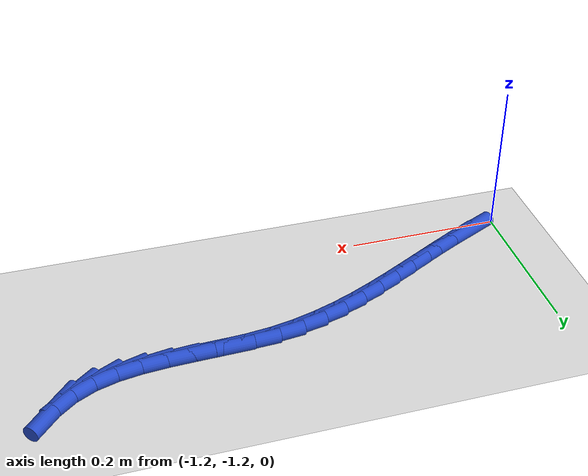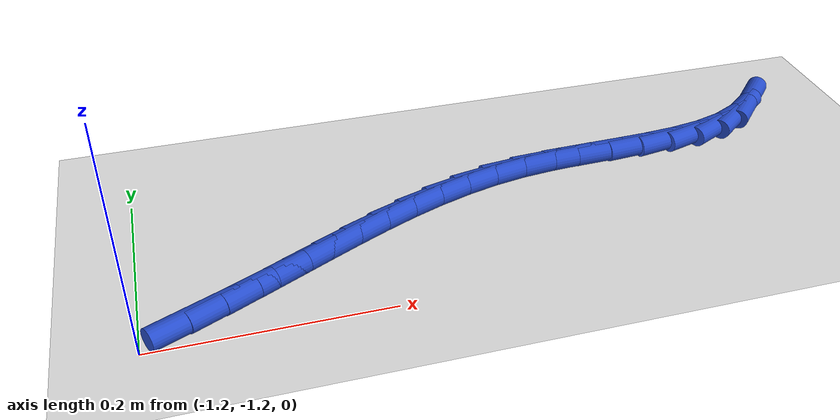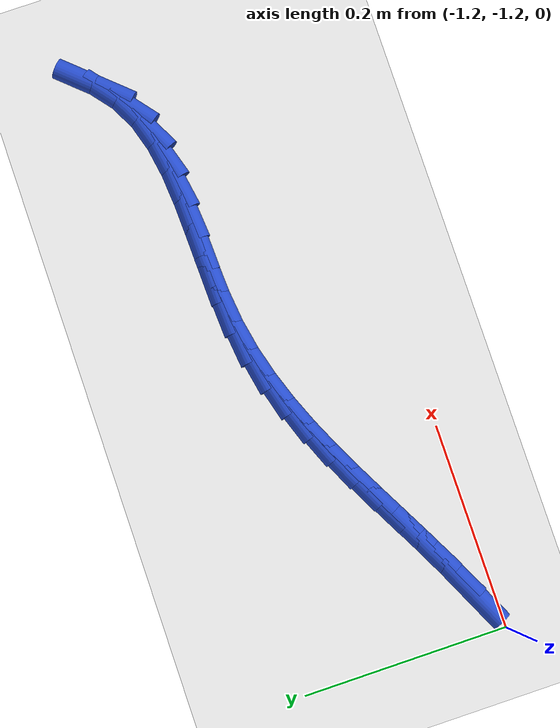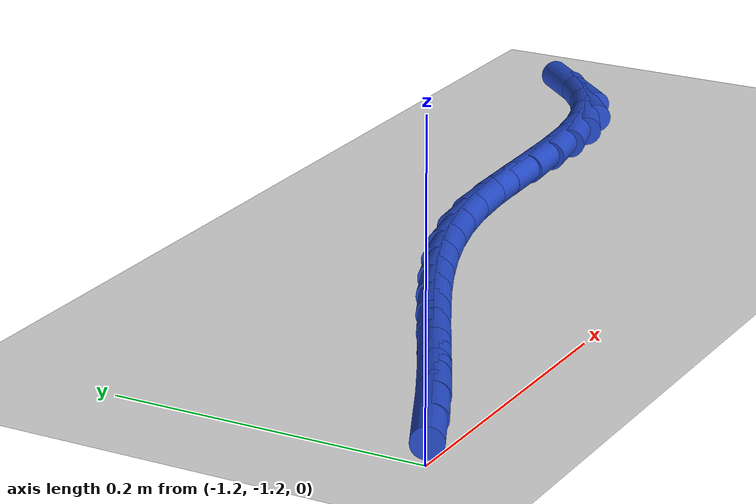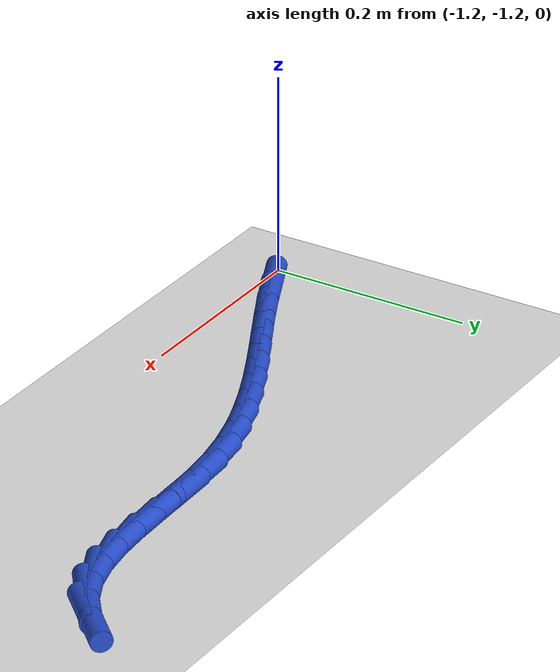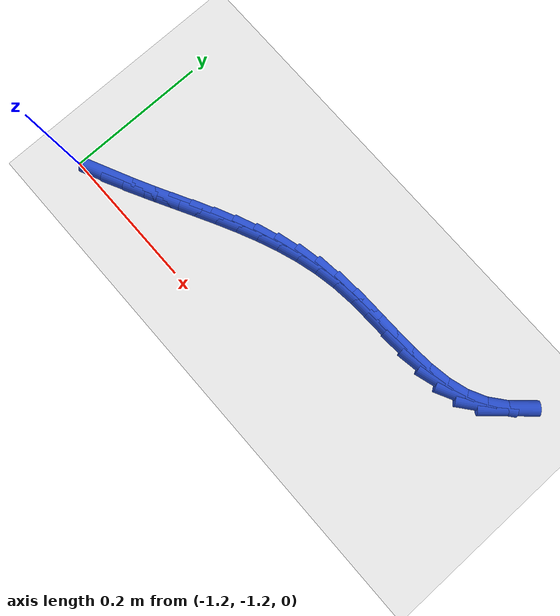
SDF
<sdf version="1.6">
 <world name="default">
  <model name="ground_plane">
   <static>1</static>
   <link name="link">
    <collision name="collision">
     <geometry><plane><normal>0 0 1</normal><size>100 100</size></plane></geometry>
     <surface><friction><ode><mu>100</mu><mu2>50</mu2></ode></friction></surface>
    </collision>
    <visual name="visual">
     <cast_shadows>0</cast_shadows>
     <geometry><plane><normal>0 0 1</normal><size>100 100</size></plane></geometry>
     <material>
      <script><uri>file://media/materials/scripts/gazebo.material</uri><name>Gazebo/WhiteGlow</name></script>
     </material>
    </visual>
   </link>
  </model>
  <model name="line">
   <link name="link_181">
    <pose>-1.156591870119526 -1.1799944481574243 0.01 0 1.57 0.44338196629081533</pose>
    <collision name="collision">
     <geometry><cylinder><radius>0.01</radius><length>0.08</length></cylinder></geometry>
    </collision>
    <visual name="visual">
     <material>
      <script><name>Gazebo/Blue</name><uri>file://media/materials/scripts/gazebo.material</uri></script>
     </material>
     <geometry><cylinder><radius>0.01</radius><length>0.08</length></cylinder></geometry>
    </visual>
   </link>
   <link name="link_182">
    <pose>-1.1275433743508079 -1.1661987755394667 0.01 0 1.57 0.46963307695380613</pose>
    <collision name="collision">
     <geometry><cylinder><radius>0.01</radius><length>0.08</length></cylinder></geometry>
    </collision>
    <visual name="visual">
     <material>
      <script><name>Gazebo/Blue</name><uri>file://media/materials/scripts/gazebo.material</uri></script>
     </material>
     <geometry><cylinder><radius>0.01</radius><length>0.08</length></cylinder></geometry>
    </visual>
   </link>
   <link name="link_183">
    <pose>-1.0992935250026412 -1.1518618531710723 0.01 0 1.57 0.48520798476041205</pose>
    <collision name="collision">
     <geometry><cylinder><radius>0.01</radius><length>0.08</length></cylinder></geometry>
    </collision>
    <visual name="visual">
     <material>
      <script><name>Gazebo/Blue</name><uri>file://media/materials/scripts/gazebo.material</uri></script>
     </material>
     <geometry><cylinder><radius>0.01</radius><length>0.08</length></cylinder></geometry>
    </visual>
   </link>
   <link name="link_184">
    <pose>-1.0716421486666659 -1.1372827082661183 0.01 0 1.57 0.48959633672031083</pose>
    <collision name="collision">
     <geometry><cylinder><radius>0.01</radius><length>0.08</length></cylinder></geometry>
    </collision>
    <visual name="visual">
     <material>
      <script><name>Gazebo/Blue</name><uri>file://media/materials/scripts/gazebo.material</uri></script>
     </material>
     <geometry><cylinder><radius>0.01</radius><length>0.08</length></cylinder></geometry>
    </visual>
   </link>
   <link name="link_185">
    <pose>-1.04438907193452 -1.122760368038482 0.01 0 1.57 0.48236442349186165</pose>
    <collision name="collision">
     <geometry><cylinder><radius>0.01</radius><length>0.08</length></cylinder></geometry>
    </collision>
    <visual name="visual">
     <material>
      <script><name>Gazebo/Blue</name><uri>file://media/materials/scripts/gazebo.material</uri></script>
     </material>
     <geometry><cylinder><radius>0.01</radius><length>0.08</length></cylinder></geometry>
    </visual>
   </link>
   <link name="link_186">
    <pose>-1.017334121397844 -1.1085938597020426 0.01 0 1.57 0.4631492879248311</pose>
    <collision name="collision">
     <geometry><cylinder><radius>0.01</radius><length>0.08</length></cylinder></geometry>
    </collision>
    <visual name="visual">
     <material>
      <script><name>Gazebo/Blue</name><uri>file://media/materials/scripts/gazebo.material</uri></script>
     </material>
     <geometry><cylinder><radius>0.01</radius><length>0.08</length></cylinder></geometry>
    </visual>
   </link>
   <link name="link_187">
    <pose>-0.9902771236482759 -1.095082210470676 0.01 0 1.57 0.4316994193126159</pose>
    <collision name="collision">
     <geometry><cylinder><radius>0.01</radius><length>0.08</length></cylinder></geometry>
    </collision>
    <visual name="visual">
     <material>
      <script><name>Gazebo/Blue</name><uri>file://media/materials/scripts/gazebo.material</uri></script>
     </material>
     <geometry><cylinder><radius>0.01</radius><length>0.08</length></cylinder></geometry>
    </visual>
   </link>
   <link name="link_188">
    <pose>-0.9630179052774549 -1.0825244475582607 0.01 0 1.57 0.3879698155243463</pose>
    <collision name="collision">
     <geometry><cylinder><radius>0.01</radius><length>0.08</length></cylinder></geometry>
    </collision>
    <visual name="visual">
     <material>
      <script><name>Gazebo/Blue</name><uri>file://media/materials/scripts/gazebo.material</uri></script>
     </material>
     <geometry><cylinder><radius>0.01</radius><length>0.08</length></cylinder></geometry>
    </visual>
   </link>
   <link name="link_189">
    <pose>-0.9353562928770199 -1.0712195981786743 0.01 0 1.57 0.332269404309817</pose>
    <collision name="collision">
     <geometry><cylinder><radius>0.01</radius><length>0.08</length></cylinder></geometry>
    </collision>
    <visual name="visual">
     <material>
      <script><name>Gazebo/Blue</name><uri>file://media/materials/scripts/gazebo.material</uri></script>
     </material>
     <geometry><cylinder><radius>0.01</radius><length>0.08</length></cylinder></geometry>
    </visual>
   </link>
   <link name="link_190">
    <pose>-0.9070921130386101 -1.0614666895457945 0.01 0 1.57 0.26543847760644756</pose>
    <collision name="collision">
     <geometry><cylinder><radius>0.01</radius><length>0.08</length></cylinder></geometry>
    </collision>
    <visual name="visual">
     <material>
      <script><name>Gazebo/Blue</name><uri>file://media/materials/scripts/gazebo.material</uri></script>
     </material>
     <geometry><cylinder><radius>0.01</radius><length>0.08</length></cylinder></geometry>
    </visual>
   </link>
   <link name="link_191">
    <pose>-0.8780251923538644 -1.0535647488734985 0.01 0 1.57 0.18900307240420916</pose>
    <collision name="collision">
     <geometry><cylinder><radius>0.01</radius><length>0.08</length></cylinder></geometry>
    </collision>
    <visual name="visual">
     <material>
      <script><name>Gazebo/Blue</name><uri>file://media/materials/scripts/gazebo.material</uri></script>
     </material>
     <geometry><cylinder><radius>0.01</radius><length>0.08</length></cylinder></geometry>
    </visual>
   </link>
   <link name="link_192">
    <pose>-0.847955357414421 -1.0478128033756642 0.01 0 1.57 0.1077946562150761</pose>
    <collision name="collision">
     <geometry><cylinder><radius>0.01</radius><length>0.08</length></cylinder></geometry>
    </collision>
    <visual name="visual">
     <material>
      <script><name>Gazebo/Blue</name><uri>file://media/materials/scripts/gazebo.material</uri></script>
     </material>
     <geometry><cylinder><radius>0.01</radius><length>0.08</length></cylinder></geometry>
    </visual>
   </link>
   <link name="link_193">
    <pose>-0.8167274963304222 -1.0444335078890732 0.01 0 1.57 0.0490956445953706</pose>
    <collision name="collision">
     <geometry><cylinder><radius>0.01</radius><length>0.08</length></cylinder></geometry>
    </collision>
    <visual name="visual">
     <material>
      <script><name>Gazebo/Blue</name><uri>file://media/materials/scripts/gazebo.material</uri></script>
     </material>
     <geometry><cylinder><radius>0.01</radius><length>0.08</length></cylinder></geometry>
    </visual>
   </link>
   <link name="link_194">
    <pose>-0.7846537701069674 -1.0428575612107043 0.01 0 1.57 0.02507038618455352</pose>
    <collision name="collision">
     <geometry><cylinder><radius>0.01</radius><length>0.08</length></cylinder></geometry>
    </collision>
    <visual name="visual">
     <material>
      <script><name>Gazebo/Blue</name><uri>file://media/materials/scripts/gazebo.material</uri></script>
     </material>
     <geometry><cylinder><radius>0.01</radius><length>0.08</length></cylinder></geometry>
    </visual>
   </link>
   <link name="link_195">
    <pose>-0.7523229528442474 -1.0420468452776033 0.01 0 1.57 0.03404551658771052</pose>
    <collision name="collision">
     <geometry><cylinder><radius>0.01</radius><length>0.08</length></cylinder></geometry>
    </collision>
    <visual name="visual">
     <material>
      <script><name>Gazebo/Blue</name><uri>file://media/materials/scripts/gazebo.material</uri></script>
     </material>
     <geometry><cylinder><radius>0.01</radius><length>0.08</length></cylinder></geometry>
    </visual>
   </link>
   <link name="link_196">
    <pose>-0.7203274307054314 -1.040957120132901 0.01 0 1.57 0.07751230214014944</pose>
    <collision name="collision">
     <geometry><cylinder><radius>0.01</radius><length>0.08</length></cylinder></geometry>
    </collision>
    <visual name="visual">
     <material>
      <script><name>Gazebo/Blue</name><uri>file://media/materials/scripts/gazebo.material</uri></script>
     </material>
     <geometry><cylinder><radius>0.01</radius><length>0.08</length></cylinder></geometry>
    </visual>
   </link>
   <link name="link_197">
    <pose>-0.6892595898536883 -1.0385441458197289 0.01 0 1.57 0.16039775731887423</pose>
    <collision name="collision">
     <geometry><cylinder><radius>0.01</radius><length>0.08</length></cylinder></geometry>
    </collision>
    <visual name="visual">
     <material>
      <script><name>Gazebo/Blue</name><uri>file://media/materials/scripts/gazebo.material</uri></script>
     </material>
     <geometry><cylinder><radius>0.01</radius><length>0.08</length></cylinder></geometry>
    </visual>
   </link>
   <link name="link_198">
    <pose>-0.6597118164521881 -1.033763682381219 0.01 0 1.57 0.2901720982803928</pose>
    <collision name="collision">
     <geometry><cylinder><radius>0.01</radius><length>0.08</length></cylinder></geometry>
    </collision>
    <visual name="visual">
     <material>
      <script><name>Gazebo/Blue</name><uri>file://media/materials/scripts/gazebo.material</uri></script>
     </material>
     <geometry><cylinder><radius>0.01</radius><length>0.08</length></cylinder></geometry>
    </visual>
   </link>
   <link name="link_199">
    <pose>-0.6322764966640995 -1.0255714898605024 0.01 0 1.57 0.47242746045192724</pose>
    <collision name="collision">
     <geometry><cylinder><radius>0.01</radius><length>0.08</length></cylinder></geometry>
    </collision>
    <visual name="visual">
     <material>
      <script><name>Gazebo/Blue</name><uri>file://media/materials/scripts/gazebo.material</uri></script>
     </material>
     <geometry><cylinder><radius>0.01</radius><length>0.08</length></cylinder></geometry>
    </visual>
   </link>
   <link name="link_200">
    <pose>-0.6075411882039734 -1.0129311662082325 0.01 0 1.57 0.6738032635920256</pose>
    <collision name="collision">
     <geometry><cylinder><radius>0.01</radius><length>0.08</length></cylinder></geometry>
    </collision>
    <visual name="visual">
     <material>
      <script><name>Gazebo/Blue</name><uri>file://media/materials/scripts/gazebo.material</uri></script>
     </material>
     <geometry><cylinder><radius>0.01</radius><length>0.08</length></cylinder></geometry>
    </visual>
   </link>
   <link name="link_201">
    <pose>-0.5856806783003773 -0.9954763500347261 0.01 0 1.57 0.8324048744072657</pose>
    <collision name="collision">
     <geometry><cylinder><radius>0.01</radius><length>0.08</length></cylinder></geometry>
    </collision>
    <visual name="visual">
     <material>
      <script><name>Gazebo/Blue</name><uri>file://media/materials/scripts/gazebo.material</uri></script>
     </material>
     <geometry><cylinder><radius>0.01</radius><length>0.08</length></cylinder></geometry>
    </visual>
   </link>
  </model>
 </world>
</sdf>
